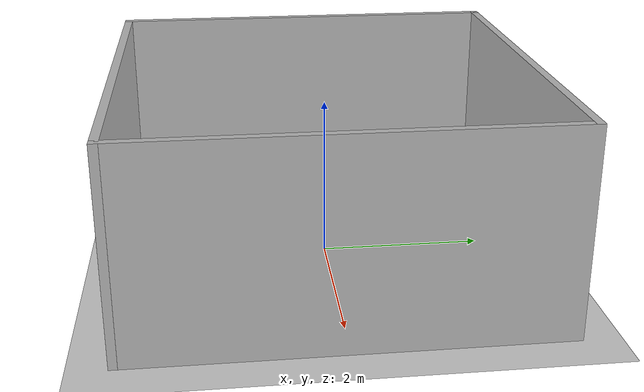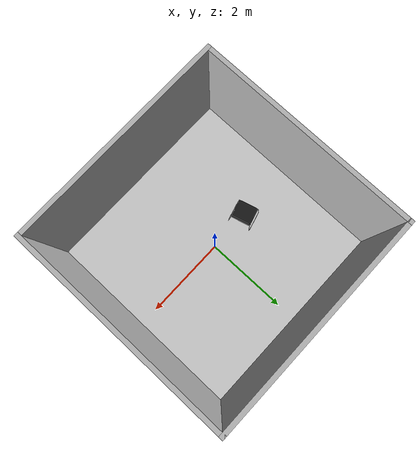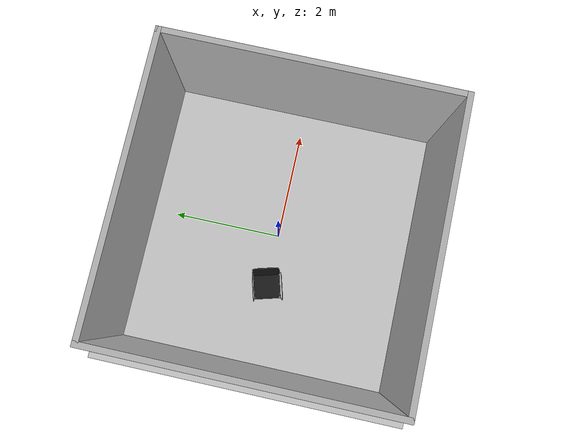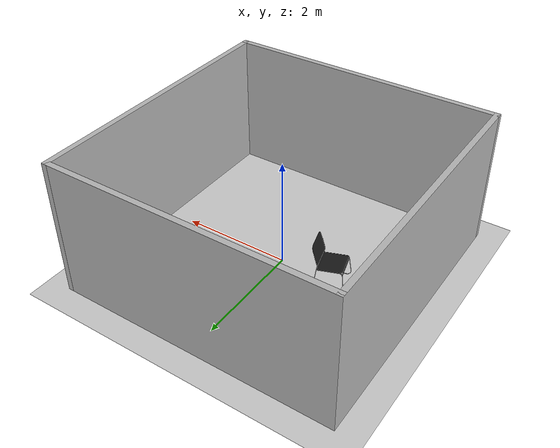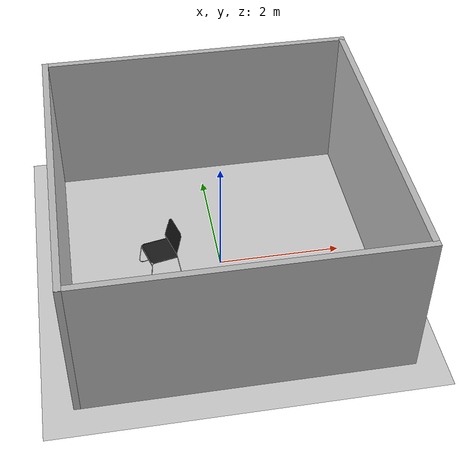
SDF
<sdf version="1.4">
 <world name="default">
  <include><uri>model://ground_plane_textured</uri></include>
  <include><uri>model://sun</uri></include>
  <include><uri>model://simpleFourWallTextured</uri></include>
  <include><uri>model://chair_3</uri><pose>-1.0 0.0 0.0 0.0 0.0 -1.3</pose></include>
 </world>
</sdf>

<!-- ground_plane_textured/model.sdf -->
<sdf version="1.5">
  <model name="ground_plane_textured">
    <static>true</static>
    <link name="link">
      <collision name="collision">
        <geometry>
          <plane>
            <normal>0 0 1</normal>
            <size>6 6</size>
          </plane>
        </geometry>
        <surface>
          <contact>
             <collide_bitmask>0xffff</collide_bitmask>
          </contact>
          <friction>
            <ode>
              <mu>100</mu>
              <mu2>50</mu2>
            </ode>
          </friction>
        </surface>
      </collision>
      <visual name="visual">
        <cast_shadows>false</cast_shadows>
        <geometry>
          <plane>
            <normal>0 0 1</normal>
            <size>6 6</size>
          </plane>
        </geometry>

        <material>
          <script>
            <uri>model://ground_plane_textured/materials/scripts/byu.material</uri>
            <name>BYU/ground</name>
          </script>
        </material>

      </visual>
    </link>
  </model>
</sdf>

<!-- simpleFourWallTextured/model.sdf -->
<sdf version='1.6'>
  <model name='simpleFourWallTextured'>
    <pose frame=''>0 0 0 0 -0 0</pose>
    <link name='Wall_12'>
      <collision name='Wall_12_Collision'>
        <geometry>
          <box>
            <size>5.1 0.1 2.5</size>
          </box>
        </geometry>
        <pose frame=''>0 0 1.25 0 -0 0</pose>
      </collision>
      <visual name='Wall_12_Visual'>
        <pose frame=''>0 0 1.25 0 -0 0</pose>
        <geometry>
          <box>
            <size>5.1 0.1 2.5</size>
          </box>
        </geometry>

        <material>
          <script>
            <uri>model://simpleFourWallTextured/materials/scripts/cardboard.material</uri>
            <name>cardboard</name>
          </script>
        </material>

        <meta>
          <layer>0</layer>
        </meta>
      </visual>
      <pose frame=''>2.5 0 0 0 -0 -1.5708</pose>
    </link>
    <link name='Wall_14'>
      <collision name='Wall_14_Collision'>
        <geometry>
          <box>
            <size>5.1 0.1 2.5</size>
          </box>
        </geometry>
        <pose frame=''>0 0 1.25 0 -0 0</pose>
      </collision>
      <visual name='Wall_14_Visual'>
        <pose frame=''>0 0 1.25 0 -0 0</pose>
        <geometry>
          <box>
            <size>5.1 0.1 2.5</size>
          </box>
        </geometry>
        <material>
          <script>
            <uri>model://simpleFourWallTextured/materials/scripts/cardboard2.material</uri>
            <name>cardboard2</name>
          </script>
        </material>
        <meta>
          <layer>0</layer>
        </meta>
      </visual>
      <pose frame=''>0 -2.5 0 0 -0 3.14159</pose>
    </link>
    <link name='Wall_16'>
      <collision name='Wall_16_Collision'>
        <geometry>
          <box>
            <size>5.1 0.1 2.5</size>
          </box>
        </geometry>
        <pose frame=''>0 0 1.25 0 -0 0</pose>
      </collision>
      <visual name='Wall_16_Visual'>
        <pose frame=''>0 0 1.25 0 -0 0</pose>
        <geometry>
          <box>
            <size>5.1 0.1 2.5</size>
          </box>
        </geometry>
        <material>
          <script>
            <uri>model://simpleFourWallTextured/materials/scripts/cardboard3.material</uri>
            <name>cardboard3</name>
          </script>
        </material>
        <meta>
          <layer>0</layer>
        </meta>
      </visual>
      <pose frame=''>-2.5 0 0 0 -0 1.5708</pose>
    </link>
    <link name='Wall_8'>
      <collision name='Wall_8_Collision'>
        <geometry>
          <box>
            <size>5.1 0.1 2.5</size>
          </box>
        </geometry>
        <pose frame=''>0 0 1.25 0 -0 0</pose>
      </collision>
      <visual name='Wall_8_Visual'>
        <pose frame=''>0 0 1.25 0 -0 0</pose>
        <geometry>
          <box>
            <size>5.1 0.1 2.5</size>
          </box>
        </geometry>
        <material>
          <script>
            <uri>model://simpleFourWallTextured/materials/scripts/cardboard4.material</uri>
            <name>cardboard4</name>
          </script>
        </material>
        <meta>
          <layer>0</layer>
        </meta>
      </visual>
      <pose frame=''>0 2.5 0 0 -0 3.14159</pose>
    </link>
    <static>1</static>
  </model>
</sdf>

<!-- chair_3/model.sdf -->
<sdf version='1.6'>
  <model name='chair_3'>
    <link name='link_4'>
      <pose frame=''>-0.282457 -0.259387 0 0 -0 0</pose>
          <visual name='visual'>
        <pose frame=''>0 0 0 0 -0 0</pose>
        <geometry>
          <mesh>
            <uri>model://chair_3/meshes/model.dae</uri>
            <scale>1 1 1</scale>
          </mesh>
        </geometry>
        <material>
          <lighting>1</lighting>
          <ambient>0 0 0 1</ambient>
          <diffuse>0.1 0.1 0.1 1</diffuse>
          <specular>0.01 0.01 0.01 1</specular>
          <emissive>0 0 0 1</emissive>
        </material>
        <cast_shadows>1</cast_shadows>
        <transparency>0</transparency>
      </visual>
      <collision name='collision'>
        <laser_retro>0</laser_retro>
        <max_contacts>10</max_contacts>
        <pose frame=''>0 0 0 0 -0 0</pose>
        <geometry>
          <mesh>
            <uri>model://chair_3/meshes/model.dae</uri>
            <scale>1 1 1</scale>
          </mesh>
        </geometry>
      </collision>
    </link>
    <static>1</static>
    <allow_auto_disable>1</allow_auto_disable>
  </model>
</sdf>
